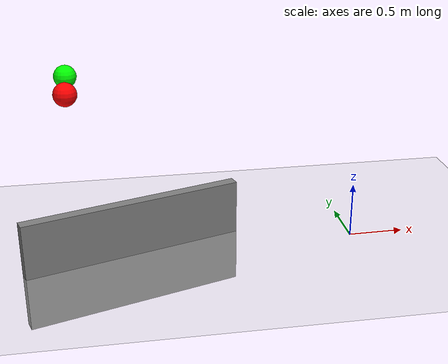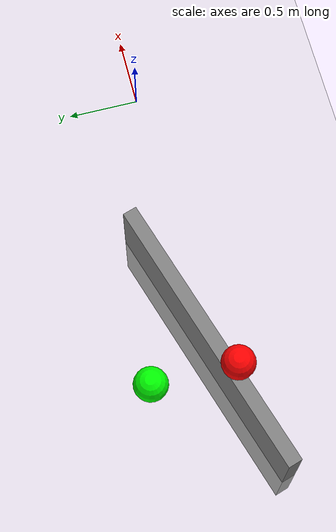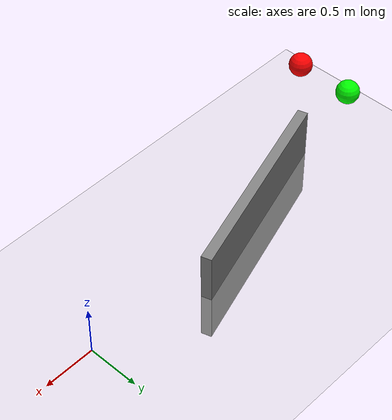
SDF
<?xml version="1.0"?>
<sdf version="1.7">
  <world name="collision_test">
    <physics type="ode">
      <max_step_size>0.001</max_step_size>
      <real_time_factor>1</real_time_factor>
      <real_time_update_rate>1000</real_time_update_rate>
      <gravity>0 0 -9.8</gravity>
    </physics>

    <!-- Ground plane -->
    <include>
      <uri>model://ground_plane</uri>
    </include>

    <!-- Sun light -->
    <include>
      <uri>model://sun</uri>
    </include>

    <!-- Ramps for collision testing -->
    <model name="ramp1">
      <pose>-2 0 0 0 0 0.3</pose>
      <link name="ramp_link">
        <collision name="ramp_collision">
          <geometry>
            <box>
              <size>2 0.1 1</size>
            </box>
          </geometry>
        </collision>
        <visual name="ramp_visual">
          <geometry>
            <box>
              <size>2 0.1 1</size>
            </box>
          </geometry>
          <material>
            <ambient>0.5 0.5 0.5 1</ambient>
            <diffuse>0.5 0.5 0.5 1</diffuse>
          </material>
        </visual>
        <inertial>
          <mass>10.0</mass>
          <inertia>
            <ixx>1.0</ixx>
            <ixy>0</ixy>
            <ixz>0</ixz>
            <iyy>1.0</iyy>
            <iyz>0</iyz>
            <izz>1.0</izz>
          </inertia>
        </inertial>
      </link>
    </model>

    <!-- Rolling spheres with different materials -->
    <model name="sphere1">
      <pose>-2.5 0 1.5 0 0 0</pose>
      <link name="sphere_link">
        <collision name="sphere_collision">
          <geometry>
            <sphere>
              <radius>0.1</radius>
            </sphere>
          </geometry>
          <surface>
            <friction>
              <ode>
                <mu>0.1</mu>
              </ode>
            </friction>
          </surface>
        </collision>
        <visual name="sphere_visual">
          <geometry>
            <sphere>
              <radius>0.1</radius>
            </sphere>
          </geometry>
          <material>
            <ambient>1 0 0 1</ambient>
            <diffuse>1 0 0 1</diffuse>
          </material>
        </visual>
        <inertial>
          <mass>0.1</mass>
          <inertia>
            <ixx>0.0002</ixx>
            <ixy>0</ixy>
            <ixz>0</ixz>
            <iyy>0.0002</iyy>
            <iyz>0</iyz>
            <izz>0.0002</izz>
          </inertia>
        </inertial>
      </link>
    </model>

    <model name="sphere2">
      <pose>-2.5 0.5 1.5 0 0 0</pose>
      <link name="sphere_link">
        <collision name="sphere_collision">
          <geometry>
            <sphere>
              <radius>0.1</radius>
            </sphere>
          </geometry>
          <surface>
            <friction>
              <ode>
                <mu>0.8</mu>
              </ode>
            </friction>
          </surface>
        </collision>
        <visual name="sphere_visual">
          <geometry>
            <sphere>
              <radius>0.1</radius>
            </sphere>
          </geometry>
          <material>
            <ambient>0 1 0 1</ambient>
            <diffuse>0 1 0 1</diffuse>
          </material>
        </visual>
        <inertial>
          <mass>0.1</mass>
          <inertia>
            <ixx>0.0002</ixx>
            <ixy>0</ixy>
            <ixz>0</ixz>
            <iyy>0.0002</iyy>
            <iyz>0</iyz>
            <izz>0.0002</izz>
          </inertia>
        </inertial>
      </link>
    </model>
  </world>
</sdf>
